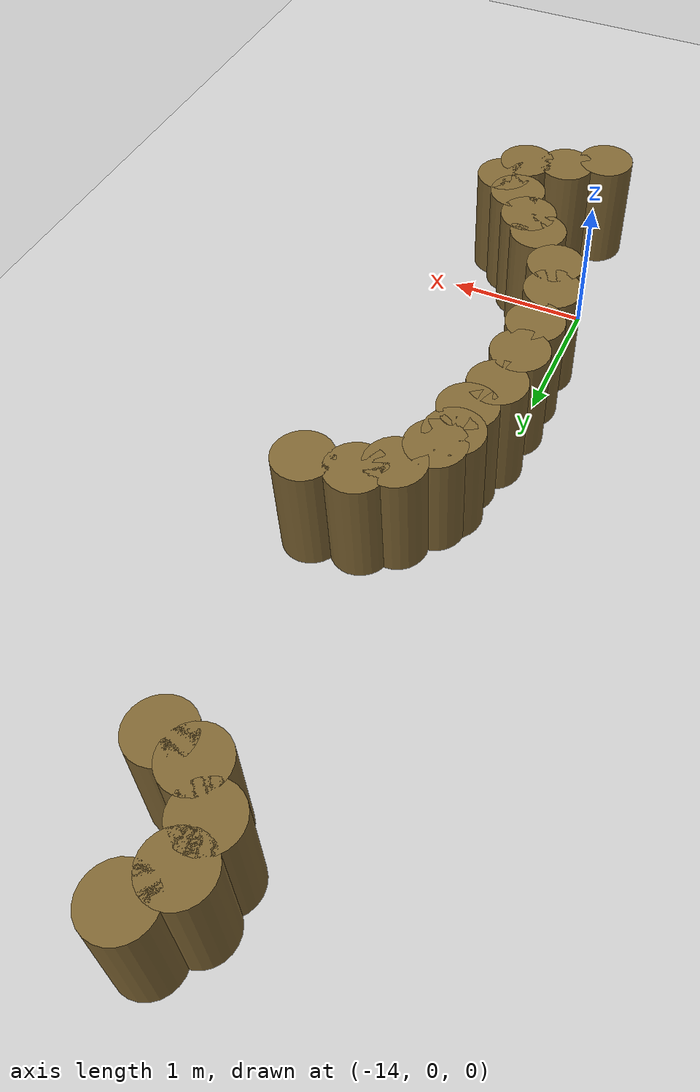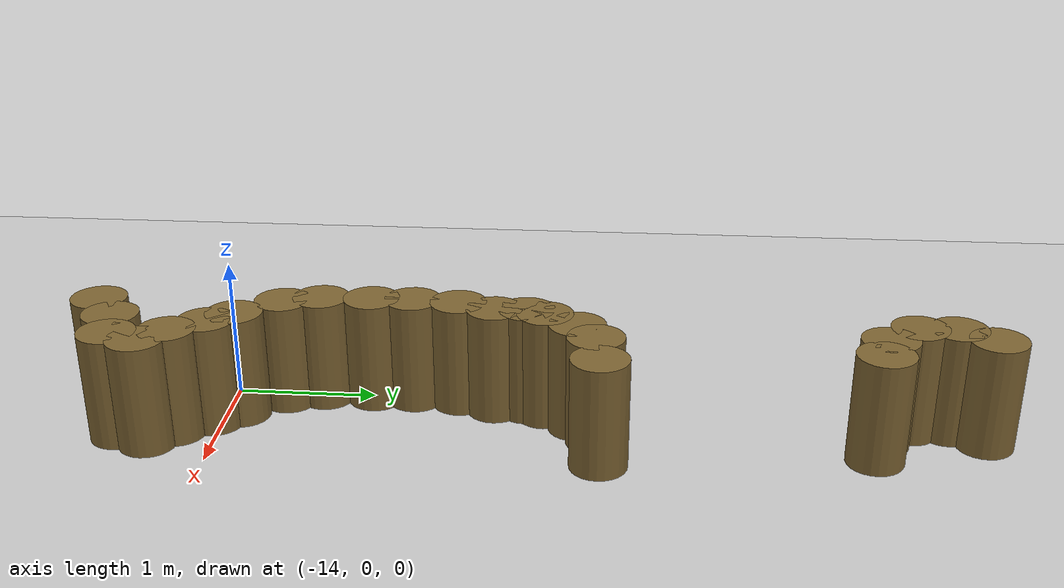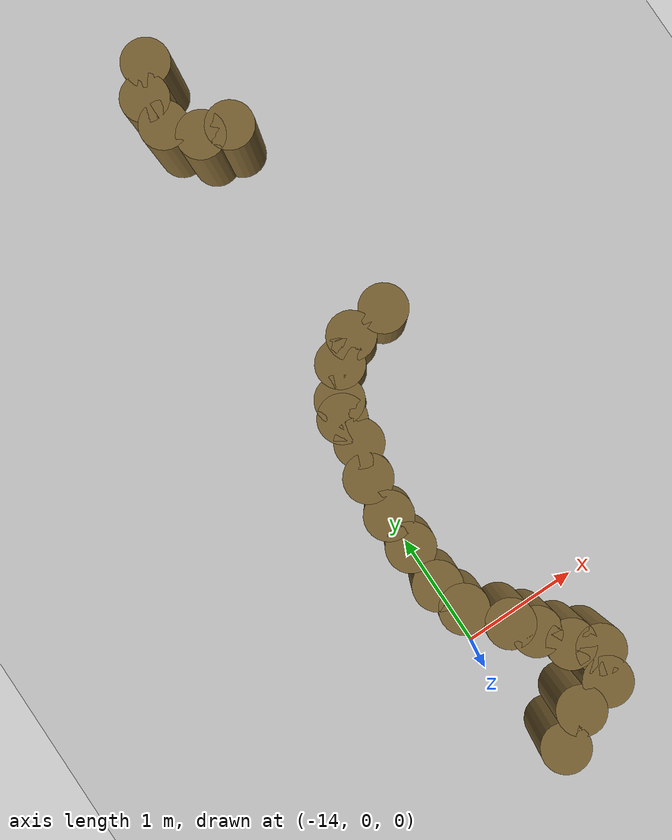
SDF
<sdf version="1.7">
 <world name="default">
  <model name="ground_plane">
   <static>1</static>
   <link name="link">
    <collision name="collision">
     <geometry><plane><normal>0 0 1</normal><size>100 100</size></plane></geometry>
     <surface><friction><ode><mu>100</mu><mu2>50</mu2></ode></friction></surface>
    </collision>
    <visual name="visual">
     <cast_shadows>0</cast_shadows>
     <geometry><plane><normal>0 0 1</normal><size>100 100</size></plane></geometry>
     <material>
      <script><uri>file://media/materials/scripts/gazebo.material</uri><name>Gazebo/Grey</name></script>
     </material>
    </visual>
   </link>
  </model>
  <model name="mini_cylinder_0_clone_0_clone_clone_clone_clone_3_clone_20_clone_1">
   <link name="link">
    <inertial>
     <mass>1</mass>
     <inertia><ixx>0.145833</ixx><ixy>0</ixy><ixz>0</ixz><iyy>0.145833</iyy><iyz>0</iyz><izz>0.125</izz></inertia>
    </inertial>
    <visual name="visual">
     <geometry><cylinder><radius>0.2</radius><length>0.8</length></cylinder></geometry>
     <material>
      <script><name>Gazebo/Grey</name><uri>file://media/materials/scripts/gazebo.material</uri></script>
      <shader type="vertex"><normal_map>__default__</normal_map></shader>
      <ambient>0.5 0.4 0.2 1</ambient>
      <diffuse>0.7 0.7 0.7 1</diffuse>
      <specular>0.01 0.01 0.01 1</specular>
      <emissive>0 0 0 1</emissive>
     </material>
    </visual>
    <collision name="collision">
     <geometry><cylinder><radius>0.2</radius><length>0.8</length></cylinder></geometry>
     <surface>
      <friction>
       <ode><mu>1</mu><mu2>1</mu2><fdir1>0 0 0</fdir1><slip1>0</slip1><slip2>0</slip2></ode>
       <torsional>
        <coefficient>1</coefficient>
        <patch_radius>0</patch_radius>
        <surface_radius>0</surface_radius>
        <use_patch_radius>1</use_patch_radius>
        <ode><slip>0</slip></ode>
       </torsional>
      </friction>
      <bounce><restitution_coefficient>0</restitution_coefficient><threshold>1e+06</threshold></bounce>
      <contact>
       <collide_without_contact>0</collide_without_contact>
       <collide_without_contact_bitmask>1</collide_without_contact_bitmask>
       <collide_bitmask>1</collide_bitmask>
       <ode>
        <soft_cfm>0</soft_cfm>
        <soft_erp>0.2</soft_erp>
        <kp>1e+13</kp>
        <kd>1</kd>
        <max_vel>0.01</max_vel>
        <min_depth>0</min_depth>
       </ode>
       <bullet>
        <split_impulse>1</split_impulse>
        <split_impulse_penetration_threshold>-0.01</split_impulse_penetration_threshold>
        <soft_cfm>0</soft_cfm>
        <soft_erp>0.2</soft_erp>
        <kp>1e+13</kp>
        <kd>1</kd>
       </bullet>
      </contact>
     </surface>
    </collision>
   </link>
   <static>1</static>
   <pose>-13.8351 -0.902632 0.4 0 -0 0</pose>
  </model>
  <model name="mini_cylinder_0_clone_0_clone_clone_clone_clone_3_clone_20_clone_2">
   <link name="link">
    <inertial>
     <mass>1</mass>
     <inertia><ixx>0.145833</ixx><ixy>0</ixy><ixz>0</ixz><iyy>0.145833</iyy><iyz>0</iyz><izz>0.125</izz></inertia>
    </inertial>
    <visual name="visual">
     <geometry><cylinder><radius>0.2</radius><length>0.8</length></cylinder></geometry>
     <material>
      <script><name>Gazebo/Grey</name><uri>file://media/materials/scripts/gazebo.material</uri></script>
      <shader type="vertex"><normal_map>__default__</normal_map></shader>
      <ambient>0.5 0.4 0.2 1</ambient>
      <diffuse>0.7 0.7 0.7 1</diffuse>
      <specular>0.01 0.01 0.01 1</specular>
      <emissive>0 0 0 1</emissive>
     </material>
    </visual>
    <collision name="collision">
     <geometry><cylinder><radius>0.2</radius><length>0.8</length></cylinder></geometry>
     <surface>
      <friction>
       <ode><mu>1</mu><mu2>1</mu2><fdir1>0 0 0</fdir1><slip1>0</slip1><slip2>0</slip2></ode>
       <torsional>
        <coefficient>1</coefficient>
        <patch_radius>0</patch_radius>
        <surface_radius>0</surface_radius>
        <use_patch_radius>1</use_patch_radius>
        <ode><slip>0</slip></ode>
       </torsional>
      </friction>
      <bounce><restitution_coefficient>0</restitution_coefficient><threshold>1e+06</threshold></bounce>
      <contact>
       <collide_without_contact>0</collide_without_contact>
       <collide_without_contact_bitmask>1</collide_without_contact_bitmask>
       <collide_bitmask>1</collide_bitmask>
       <ode>
        <soft_cfm>0</soft_cfm>
        <soft_erp>0.2</soft_erp>
        <kp>1e+13</kp>
        <kd>1</kd>
        <max_vel>0.01</max_vel>
        <min_depth>0</min_depth>
       </ode>
       <bullet>
        <split_impulse>1</split_impulse>
        <split_impulse_penetration_threshold>-0.01</split_impulse_penetration_threshold>
        <soft_cfm>0</soft_cfm>
        <soft_erp>0.2</soft_erp>
        <kp>1e+13</kp>
        <kd>1</kd>
       </bullet>
      </contact>
     </surface>
    </collision>
   </link>
   <static>1</static>
   <pose>-13.5779 -0.736125 0.4 0 -0 0</pose>
  </model>
  <model name="mini_cylinder_0_clone_0_clone_clone_clone_clone_3_clone_20_clone_3">
   <link name="link">
    <inertial>
     <mass>1</mass>
     <inertia><ixx>0.145833</ixx><ixy>0</ixy><ixz>0</ixz><iyy>0.145833</iyy><iyz>0</iyz><izz>0.125</izz></inertia>
    </inertial>
    <visual name="visual">
     <geometry><cylinder><radius>0.2</radius><length>0.8</length></cylinder></geometry>
     <material>
      <script><name>Gazebo/Grey</name><uri>file://media/materials/scripts/gazebo.material</uri></script>
      <shader type="vertex"><normal_map>__default__</normal_map></shader>
      <ambient>0.5 0.4 0.2 1</ambient>
      <diffuse>0.7 0.7 0.7 1</diffuse>
      <specular>0.01 0.01 0.01 1</specular>
      <emissive>0 0 0 1</emissive>
     </material>
    </visual>
    <collision name="collision">
     <geometry><cylinder><radius>0.2</radius><length>0.8</length></cylinder></geometry>
     <surface>
      <friction>
       <ode><mu>1</mu><mu2>1</mu2><fdir1>0 0 0</fdir1><slip1>0</slip1><slip2>0</slip2></ode>
       <torsional>
        <coefficient>1</coefficient>
        <patch_radius>0</patch_radius>
        <surface_radius>0</surface_radius>
        <use_patch_radius>1</use_patch_radius>
        <ode><slip>0</slip></ode>
       </torsional>
      </friction>
      <bounce><restitution_coefficient>0</restitution_coefficient><threshold>1e+06</threshold></bounce>
      <contact>
       <collide_without_contact>0</collide_without_contact>
       <collide_without_contact_bitmask>1</collide_without_contact_bitmask>
       <collide_bitmask>1</collide_bitmask>
       <ode>
        <soft_cfm>0</soft_cfm>
        <soft_erp>0.2</soft_erp>
        <kp>1e+13</kp>
        <kd>1</kd>
        <max_vel>0.01</max_vel>
        <min_depth>0</min_depth>
       </ode>
       <bullet>
        <split_impulse>1</split_impulse>
        <split_impulse_penetration_threshold>-0.01</split_impulse_penetration_threshold>
        <soft_cfm>0</soft_cfm>
        <soft_erp>0.2</soft_erp>
        <kp>1e+13</kp>
        <kd>1</kd>
       </bullet>
      </contact>
     </surface>
    </collision>
   </link>
   <static>1</static>
   <pose>-13.2871 -0.666545 0.4 0 -0 0</pose>
  </model>
  <model name="mini_cylinder_0_clone_0_clone_clone_clone_clone_3_clone_20_clone_23">
   <link name="link">
    <inertial>
     <mass>1</mass>
     <inertia><ixx>0.145833</ixx><ixy>0</ixy><ixz>0</ixz><iyy>0.145833</iyy><iyz>0</iyz><izz>0.125</izz></inertia>
    </inertial>
    <visual name="visual">
     <geometry><cylinder><radius>0.2</radius><length>0.8</length></cylinder></geometry>
     <material>
      <script><name>Gazebo/Grey</name><uri>file://media/materials/scripts/gazebo.material</uri></script>
      <shader type="vertex"><normal_map>__default__</normal_map></shader>
      <ambient>0.5 0.4 0.2 1</ambient>
      <diffuse>0.7 0.7 0.7 1</diffuse>
      <specular>0.01 0.01 0.01 1</specular>
      <emissive>0 0 0 1</emissive>
     </material>
    </visual>
    <collision name="collision">
     <geometry><cylinder><radius>0.2</radius><length>0.8</length></cylinder></geometry>
     <surface>
      <friction>
       <ode><mu>1</mu><mu2>1</mu2><fdir1>0 0 0</fdir1><slip1>0</slip1><slip2>0</slip2></ode>
       <torsional>
        <coefficient>1</coefficient>
        <patch_radius>0</patch_radius>
        <surface_radius>0</surface_radius>
        <use_patch_radius>1</use_patch_radius>
        <ode><slip>0</slip></ode>
       </torsional>
      </friction>
      <bounce><restitution_coefficient>0</restitution_coefficient><threshold>1e+06</threshold></bounce>
      <contact>
       <collide_without_contact>0</collide_without_contact>
       <collide_without_contact_bitmask>1</collide_without_contact_bitmask>
       <collide_bitmask>1</collide_bitmask>
       <ode>
        <soft_cfm>0</soft_cfm>
        <soft_erp>0.2</soft_erp>
        <kp>1e+13</kp>
        <kd>1</kd>
        <max_vel>0.01</max_vel>
        <min_depth>0</min_depth>
       </ode>
       <bullet>
        <split_impulse>1</split_impulse>
        <split_impulse_penetration_threshold>-0.01</split_impulse_penetration_threshold>
        <soft_cfm>0</soft_cfm>
        <soft_erp>0.2</soft_erp>
        <kp>1e+13</kp>
        <kd>1</kd>
       </bullet>
      </contact>
     </surface>
    </collision>
   </link>
   <static>1</static>
   <pose>-13.1132 2.65293 0.4 0 -0 0</pose>
  </model>
  <model name="mini_cylinder_0_clone_0_clone_clone_clone_clone_3_clone_20_clone_24">
   <link name="link">
    <inertial>
     <mass>1</mass>
     <inertia><ixx>0.145833</ixx><ixy>0</ixy><ixz>0</ixz><iyy>0.145833</iyy><iyz>0</iyz><izz>0.125</izz></inertia>
    </inertial>
    <visual name="visual">
     <geometry><cylinder><radius>0.2</radius><length>0.8</length></cylinder></geometry>
     <material>
      <script><name>Gazebo/Grey</name><uri>file://media/materials/scripts/gazebo.material</uri></script>
      <shader type="vertex"><normal_map>__default__</normal_map></shader>
      <ambient>0.5 0.4 0.2 1</ambient>
      <diffuse>0.7 0.7 0.7 1</diffuse>
      <specular>0.01 0.01 0.01 1</specular>
      <emissive>0 0 0 1</emissive>
     </material>
    </visual>
    <collision name="collision">
     <geometry><cylinder><radius>0.2</radius><length>0.8</length></cylinder></geometry>
     <surface>
      <friction>
       <ode><mu>1</mu><mu2>1</mu2><fdir1>0 0 0</fdir1><slip1>0</slip1><slip2>0</slip2></ode>
       <torsional>
        <coefficient>1</coefficient>
        <patch_radius>0</patch_radius>
        <surface_radius>0</surface_radius>
        <use_patch_radius>1</use_patch_radius>
        <ode><slip>0</slip></ode>
       </torsional>
      </friction>
      <bounce><restitution_coefficient>0</restitution_coefficient><threshold>1e+06</threshold></bounce>
      <contact>
       <collide_without_contact>0</collide_without_contact>
       <collide_without_contact_bitmask>1</collide_without_contact_bitmask>
       <collide_bitmask>1</collide_bitmask>
       <ode>
        <soft_cfm>0</soft_cfm>
        <soft_erp>0.2</soft_erp>
        <kp>1e+13</kp>
        <kd>1</kd>
        <max_vel>0.01</max_vel>
        <min_depth>0</min_depth>
       </ode>
       <bullet>
        <split_impulse>1</split_impulse>
        <split_impulse_penetration_threshold>-0.01</split_impulse_penetration_threshold>
        <soft_cfm>0</soft_cfm>
        <soft_erp>0.2</soft_erp>
        <kp>1e+13</kp>
        <kd>1</kd>
       </bullet>
      </contact>
     </surface>
    </collision>
   </link>
   <static>1</static>
   <pose>-13.4377 2.61527 0.4 0 -0 0</pose>
  </model>
  <model name="mini_cylinder_0_clone_0_clone_clone_clone_clone_3_clone_20_clone_25">
   <link name="link">
    <inertial>
     <mass>1</mass>
     <inertia><ixx>0.145833</ixx><ixy>0</ixy><ixz>0</ixz><iyy>0.145833</iyy><iyz>0</iyz><izz>0.125</izz></inertia>
    </inertial>
    <visual name="visual">
     <geometry><cylinder><radius>0.2</radius><length>0.8</length></cylinder></geometry>
     <material>
      <script><name>Gazebo/Grey</name><uri>file://media/materials/scripts/gazebo.material</uri></script>
      <shader type="vertex"><normal_map>__default__</normal_map></shader>
      <ambient>0.5 0.4 0.2 1</ambient>
      <diffuse>0.7 0.7 0.7 1</diffuse>
      <specular>0.01 0.01 0.01 1</specular>
      <emissive>0 0 0 1</emissive>
     </material>
    </visual>
    <collision name="collision">
     <geometry><cylinder><radius>0.2</radius><length>0.8</length></cylinder></geometry>
     <surface>
      <friction>
       <ode><mu>1</mu><mu2>1</mu2><fdir1>0 0 0</fdir1><slip1>0</slip1><slip2>0</slip2></ode>
       <torsional>
        <coefficient>1</coefficient>
        <patch_radius>0</patch_radius>
        <surface_radius>0</surface_radius>
        <use_patch_radius>1</use_patch_radius>
        <ode><slip>0</slip></ode>
       </torsional>
      </friction>
      <bounce><restitution_coefficient>0</restitution_coefficient><threshold>1e+06</threshold></bounce>
      <contact>
       <collide_without_contact>0</collide_without_contact>
       <collide_without_contact_bitmask>1</collide_without_contact_bitmask>
       <collide_bitmask>1</collide_bitmask>
       <ode>
        <soft_cfm>0</soft_cfm>
        <soft_erp>0.2</soft_erp>
        <kp>1e+13</kp>
        <kd>1</kd>
        <max_vel>0.01</max_vel>
        <min_depth>0</min_depth>
       </ode>
       <bullet>
        <split_impulse>1</split_impulse>
        <split_impulse_penetration_threshold>-0.01</split_impulse_penetration_threshold>
        <soft_cfm>0</soft_cfm>
        <soft_erp>0.2</soft_erp>
        <kp>1e+13</kp>
        <kd>1</kd>
       </bullet>
      </contact>
     </surface>
    </collision>
   </link>
   <static>1</static>
   <pose>-13.6303 2.482 0.4 0 -0 0</pose>
  </model>
  <model name="mini_cylinder_0_clone_0_clone_clone_clone_clone_3_clone_20_clone_26">
   <link name="link">
    <inertial>
     <mass>1</mass>
     <inertia><ixx>0.145833</ixx><ixy>0</ixy><ixz>0</ixz><iyy>0.145833</iyy><iyz>0</iyz><izz>0.125</izz></inertia>
    </inertial>
    <visual name="visual">
     <geometry><cylinder><radius>0.2</radius><length>0.8</length></cylinder></geometry>
     <material>
      <script><name>Gazebo/Grey</name><uri>file://media/materials/scripts/gazebo.material</uri></script>
      <shader type="vertex"><normal_map>__default__</normal_map></shader>
      <ambient>0.5 0.4 0.2 1</ambient>
      <diffuse>0.7 0.7 0.7 1</diffuse>
      <specular>0.01 0.01 0.01 1</specular>
      <emissive>0 0 0 1</emissive>
     </material>
    </visual>
    <collision name="collision">
     <geometry><cylinder><radius>0.2</radius><length>0.8</length></cylinder></geometry>
     <surface>
      <friction>
       <ode><mu>1</mu><mu2>1</mu2><fdir1>0 0 0</fdir1><slip1>0</slip1><slip2>0</slip2></ode>
       <torsional>
        <coefficient>1</coefficient>
        <patch_radius>0</patch_radius>
        <surface_radius>0</surface_radius>
        <use_patch_radius>1</use_patch_radius>
        <ode><slip>0</slip></ode>
       </torsional>
      </friction>
      <bounce><restitution_coefficient>0</restitution_coefficient><threshold>1e+06</threshold></bounce>
      <contact>
       <collide_without_contact>0</collide_without_contact>
       <collide_without_contact_bitmask>1</collide_without_contact_bitmask>
       <collide_bitmask>1</collide_bitmask>
       <ode>
        <soft_cfm>0</soft_cfm>
        <soft_erp>0.2</soft_erp>
        <kp>1e+13</kp>
        <kd>1</kd>
        <max_vel>0.01</max_vel>
        <min_depth>0</min_depth>
       </ode>
       <bullet>
        <split_impulse>1</split_impulse>
        <split_impulse_penetration_threshold>-0.01</split_impulse_penetration_threshold>
        <soft_cfm>0</soft_cfm>
        <soft_erp>0.2</soft_erp>
        <kp>1e+13</kp>
        <kd>1</kd>
       </bullet>
      </contact>
     </surface>
    </collision>
   </link>
   <static>1</static>
   <pose>-13.7894 2.25201 0.4 0 -0 0</pose>
  </model>
  <model name="mini_cylinder_0_clone_0_clone_clone_clone_clone_3_clone_20_clone_27">
   <link name="link">
    <inertial>
     <mass>1</mass>
     <inertia><ixx>0.145833</ixx><ixy>0</ixy><ixz>0</ixz><iyy>0.145833</iyy><iyz>0</iyz><izz>0.125</izz></inertia>
    </inertial>
    <visual name="visual">
     <geometry><cylinder><radius>0.2</radius><length>0.8</length></cylinder></geometry>
     <material>
      <script><name>Gazebo/Grey</name><uri>file://media/materials/scripts/gazebo.material</uri></script>
      <shader type="vertex"><normal_map>__default__</normal_map></shader>
      <ambient>0.5 0.4 0.2 1</ambient>
      <diffuse>0.7 0.7 0.7 1</diffuse>
      <specular>0.01 0.01 0.01 1</specular>
      <emissive>0 0 0 1</emissive>
     </material>
    </visual>
    <collision name="collision">
     <geometry><cylinder><radius>0.2</radius><length>0.8</length></cylinder></geometry>
     <surface>
      <friction>
       <ode><mu>1</mu><mu2>1</mu2><fdir1>0 0 0</fdir1><slip1>0</slip1><slip2>0</slip2></ode>
       <torsional>
        <coefficient>1</coefficient>
        <patch_radius>0</patch_radius>
        <surface_radius>0</surface_radius>
        <use_patch_radius>1</use_patch_radius>
        <ode><slip>0</slip></ode>
       </torsional>
      </friction>
      <bounce><restitution_coefficient>0</restitution_coefficient><threshold>1e+06</threshold></bounce>
      <contact>
       <collide_without_contact>0</collide_without_contact>
       <collide_without_contact_bitmask>1</collide_without_contact_bitmask>
       <collide_bitmask>1</collide_bitmask>
       <ode>
        <soft_cfm>0</soft_cfm>
        <soft_erp>0.2</soft_erp>
        <kp>1e+13</kp>
        <kd>1</kd>
        <max_vel>0.01</max_vel>
        <min_depth>0</min_depth>
       </ode>
       <bullet>
        <split_impulse>1</split_impulse>
        <split_impulse_penetration_threshold>-0.01</split_impulse_penetration_threshold>
        <soft_cfm>0</soft_cfm>
        <soft_erp>0.2</soft_erp>
        <kp>1e+13</kp>
        <kd>1</kd>
       </bullet>
      </contact>
     </surface>
    </collision>
   </link>
   <static>1</static>
   <pose>-13.8483 1.89327 0.4 0 -0 0</pose>
  </model>
  <model name="mini_cylinder_0_clone_0_clone_clone_clone_clone_3_clone_20_clone_28">
   <link name="link">
    <inertial>
     <mass>1</mass>
     <inertia><ixx>0.145833</ixx><ixy>0</ixy><ixz>0</ixz><iyy>0.145833</iyy><iyz>0</iyz><izz>0.125</izz></inertia>
    </inertial>
    <visual name="visual">
     <geometry><cylinder><radius>0.2</radius><length>0.8</length></cylinder></geometry>
     <material>
      <script><name>Gazebo/Grey</name><uri>file://media/materials/scripts/gazebo.material</uri></script>
      <shader type="vertex"><normal_map>__default__</normal_map></shader>
      <ambient>0.5 0.4 0.2 1</ambient>
      <diffuse>0.7 0.7 0.7 1</diffuse>
      <specular>0.01 0.01 0.01 1</specular>
      <emissive>0 0 0 1</emissive>
     </material>
    </visual>
    <collision name="collision">
     <geometry><cylinder><radius>0.2</radius><length>0.8</length></cylinder></geometry>
     <surface>
      <friction>
       <ode><mu>1</mu><mu2>1</mu2><fdir1>0 0 0</fdir1><slip1>0</slip1><slip2>0</slip2></ode>
       <torsional>
        <coefficient>1</coefficient>
        <patch_radius>0</patch_radius>
        <surface_radius>0</surface_radius>
        <use_patch_radius>1</use_patch_radius>
        <ode><slip>0</slip></ode>
       </torsional>
      </friction>
      <bounce><restitution_coefficient>0</restitution_coefficient><threshold>1e+06</threshold></bounce>
      <contact>
       <collide_without_contact>0</collide_without_contact>
       <collide_without_contact_bitmask>1</collide_without_contact_bitmask>
       <collide_bitmask>1</collide_bitmask>
       <ode>
        <soft_cfm>0</soft_cfm>
        <soft_erp>0.2</soft_erp>
        <kp>1e+13</kp>
        <kd>1</kd>
        <max_vel>0.01</max_vel>
        <min_depth>0</min_depth>
       </ode>
       <bullet>
        <split_impulse>1</split_impulse>
        <split_impulse_penetration_threshold>-0.01</split_impulse_penetration_threshold>
        <soft_cfm>0</soft_cfm>
        <soft_erp>0.2</soft_erp>
        <kp>1e+13</kp>
        <kd>1</kd>
       </bullet>
      </contact>
     </surface>
    </collision>
   </link>
   <static>1</static>
   <pose>-13.9409 1.63155 0.4 0 -0 0</pose>
  </model>
  <model name="mini_cylinder_0_clone_0_clone_clone_clone_clone_3_clone_20_clone_29">
   <link name="link">
    <inertial>
     <mass>1</mass>
     <inertia><ixx>0.145833</ixx><ixy>0</ixy><ixz>0</ixz><iyy>0.145833</iyy><iyz>0</iyz><izz>0.125</izz></inertia>
    </inertial>
    <visual name="visual">
     <geometry><cylinder><radius>0.2</radius><length>0.8</length></cylinder></geometry>
     <material>
      <script><name>Gazebo/Grey</name><uri>file://media/materials/scripts/gazebo.material</uri></script>
      <shader type="vertex"><normal_map>__default__</normal_map></shader>
      <ambient>0.5 0.4 0.2 1</ambient>
      <diffuse>0.7 0.7 0.7 1</diffuse>
      <specular>0.01 0.01 0.01 1</specular>
      <emissive>0 0 0 1</emissive>
     </material>
    </visual>
    <collision name="collision">
     <geometry><cylinder><radius>0.2</radius><length>0.8</length></cylinder></geometry>
     <surface>
      <friction>
       <ode><mu>1</mu><mu2>1</mu2><fdir1>0 0 0</fdir1><slip1>0</slip1><slip2>0</slip2></ode>
       <torsional>
        <coefficient>1</coefficient>
        <patch_radius>0</patch_radius>
        <surface_radius>0</surface_radius>
        <use_patch_radius>1</use_patch_radius>
        <ode><slip>0</slip></ode>
       </torsional>
      </friction>
      <bounce><restitution_coefficient>0</restitution_coefficient><threshold>1e+06</threshold></bounce>
      <contact>
       <collide_without_contact>0</collide_without_contact>
       <collide_without_contact_bitmask>1</collide_without_contact_bitmask>
       <collide_bitmask>1</collide_bitmask>
       <ode>
        <soft_cfm>0</soft_cfm>
        <soft_erp>0.2</soft_erp>
        <kp>1e+13</kp>
        <kd>1</kd>
        <max_vel>0.01</max_vel>
        <min_depth>0</min_depth>
       </ode>
       <bullet>
        <split_impulse>1</split_impulse>
        <split_impulse_penetration_threshold>-0.01</split_impulse_penetration_threshold>
        <soft_cfm>0</soft_cfm>
        <soft_erp>0.2</soft_erp>
        <kp>1e+13</kp>
        <kd>1</kd>
       </bullet>
      </contact>
     </surface>
    </collision>
   </link>
   <static>1</static>
   <pose>-13.9687 1.3061 0.4 0 -0 0</pose>
  </model>
  <model name="mini_cylinder_0_clone_0_clone_clone_clone_clone_3_clone_20_clone_30">
   <link name="link">
    <inertial>
     <mass>1</mass>
     <inertia><ixx>0.145833</ixx><ixy>0</ixy><ixz>0</ixz><iyy>0.145833</iyy><iyz>0</iyz><izz>0.125</izz></inertia>
    </inertial>
    <visual name="visual">
     <geometry><cylinder><radius>0.2</radius><length>0.8</length></cylinder></geometry>
     <material>
      <script><name>Gazebo/Grey</name><uri>file://media/materials/scripts/gazebo.material</uri></script>
      <shader type="vertex"><normal_map>__default__</normal_map></shader>
      <ambient>0.5 0.4 0.2 1</ambient>
      <diffuse>0.7 0.7 0.7 1</diffuse>
      <specular>0.01 0.01 0.01 1</specular>
      <emissive>0 0 0 1</emissive>
     </material>
    </visual>
    <collision name="collision">
     <geometry><cylinder><radius>0.2</radius><length>0.8</length></cylinder></geometry>
     <surface>
      <friction>
       <ode><mu>1</mu><mu2>1</mu2><fdir1>0 0 0</fdir1><slip1>0</slip1><slip2>0</slip2></ode>
       <torsional>
        <coefficient>1</coefficient>
        <patch_radius>0</patch_radius>
        <surface_radius>0</surface_radius>
        <use_patch_radius>1</use_patch_radius>
        <ode><slip>0</slip></ode>
       </torsional>
      </friction>
      <bounce><restitution_coefficient>0</restitution_coefficient><threshold>1e+06</threshold></bounce>
      <contact>
       <collide_without_contact>0</collide_without_contact>
       <collide_without_contact_bitmask>1</collide_without_contact_bitmask>
       <collide_bitmask>1</collide_bitmask>
       <ode>
        <soft_cfm>0</soft_cfm>
        <soft_erp>0.2</soft_erp>
        <kp>1e+13</kp>
        <kd>1</kd>
        <max_vel>0.01</max_vel>
        <min_depth>0</min_depth>
       </ode>
       <bullet>
        <split_impulse>1</split_impulse>
        <split_impulse_penetration_threshold>-0.01</split_impulse_penetration_threshold>
        <soft_cfm>0</soft_cfm>
        <soft_erp>0.2</soft_erp>
        <kp>1e+13</kp>
        <kd>1</kd>
       </bullet>
      </contact>
     </surface>
    </collision>
   </link>
   <static>1</static>
   <pose>-13.964 1.01349 0.4 0 -0 0</pose>
  </model>
  <model name="mini_cylinder_0_clone_0_clone_clone_clone_clone_3_clone_20_clone_31">
   <link name="link">
    <inertial>
     <mass>1</mass>
     <inertia><ixx>0.145833</ixx><ixy>0</ixy><ixz>0</ixz><iyy>0.145833</iyy><iyz>0</iyz><izz>0.125</izz></inertia>
    </inertial>
    <visual name="visual">
     <geometry><cylinder><radius>0.2</radius><length>0.8</length></cylinder></geometry>
     <material>
      <script><name>Gazebo/Grey</name><uri>file://media/materials/scripts/gazebo.material</uri></script>
      <shader type="vertex"><normal_map>__default__</normal_map></shader>
      <ambient>0.5 0.4 0.2 1</ambient>
      <diffuse>0.7 0.7 0.7 1</diffuse>
      <specular>0.01 0.01 0.01 1</specular>
      <emissive>0 0 0 1</emissive>
     </material>
    </visual>
    <collision name="collision">
     <geometry><cylinder><radius>0.2</radius><length>0.8</length></cylinder></geometry>
     <surface>
      <friction>
       <ode><mu>1</mu><mu2>1</mu2><fdir1>0 0 0</fdir1><slip1>0</slip1><slip2>0</slip2></ode>
       <torsional>
        <coefficient>1</coefficient>
        <patch_radius>0</patch_radius>
        <surface_radius>0</surface_radius>
        <use_patch_radius>1</use_patch_radius>
        <ode><slip>0</slip></ode>
       </torsional>
      </friction>
      <bounce><restitution_coefficient>0</restitution_coefficient><threshold>1e+06</threshold></bounce>
      <contact>
       <collide_without_contact>0</collide_without_contact>
       <collide_without_contact_bitmask>1</collide_without_contact_bitmask>
       <collide_bitmask>1</collide_bitmask>
       <ode>
        <soft_cfm>0</soft_cfm>
        <soft_erp>0.2</soft_erp>
        <kp>1e+13</kp>
        <kd>1</kd>
        <max_vel>0.01</max_vel>
        <min_depth>0</min_depth>
       </ode>
       <bullet>
        <split_impulse>1</split_impulse>
        <split_impulse_penetration_threshold>-0.01</split_impulse_penetration_threshold>
        <soft_cfm>0</soft_cfm>
        <soft_erp>0.2</soft_erp>
        <kp>1e+13</kp>
        <kd>1</kd>
       </bullet>
      </contact>
     </surface>
    </collision>
   </link>
   <static>1</static>
   <pose>-13.9581 0.655887 0.4 0 -0 0</pose>
  </model>
  <model name="mini_cylinder_0_clone_0_clone_clone_clone_clone_3_clone_20_clone_32">
   <link name="link">
    <inertial>
     <mass>1</mass>
     <inertia><ixx>0.145833</ixx><ixy>0</ixy><ixz>0</ixz><iyy>0.145833</iyy><iyz>0</iyz><izz>0.125</izz></inertia>
    </inertial>
    <visual name="visual">
     <geometry><cylinder><radius>0.2</radius><length>0.8</length></cylinder></geometry>
     <material>
      <script><name>Gazebo/Grey</name><uri>file://media/materials/scripts/gazebo.material</uri></script>
      <shader type="vertex"><normal_map>__default__</normal_map></shader>
      <ambient>0.5 0.4 0.2 1</ambient>
      <diffuse>0.7 0.7 0.7 1</diffuse>
      <specular>0.01 0.01 0.01 1</specular>
      <emissive>0 0 0 1</emissive>
     </material>
    </visual>
    <collision name="collision">
     <geometry><cylinder><radius>0.2</radius><length>0.8</length></cylinder></geometry>
     <surface>
      <friction>
       <ode><mu>1</mu><mu2>1</mu2><fdir1>0 0 0</fdir1><slip1>0</slip1><slip2>0</slip2></ode>
       <torsional>
        <coefficient>1</coefficient>
        <patch_radius>0</patch_radius>
        <surface_radius>0</surface_radius>
        <use_patch_radius>1</use_patch_radius>
        <ode><slip>0</slip></ode>
       </torsional>
      </friction>
      <bounce><restitution_coefficient>0</restitution_coefficient><threshold>1e+06</threshold></bounce>
      <contact>
       <collide_without_contact>0</collide_without_contact>
       <collide_without_contact_bitmask>1</collide_without_contact_bitmask>
       <collide_bitmask>1</collide_bitmask>
       <ode>
        <soft_cfm>0</soft_cfm>
        <soft_erp>0.2</soft_erp>
        <kp>1e+13</kp>
        <kd>1</kd>
        <max_vel>0.01</max_vel>
        <min_depth>0</min_depth>
       </ode>
       <bullet>
        <split_impulse>1</split_impulse>
        <split_impulse_penetration_threshold>-0.01</split_impulse_penetration_threshold>
        <soft_cfm>0</soft_cfm>
        <soft_erp>0.2</soft_erp>
        <kp>1e+13</kp>
        <kd>1</kd>
       </bullet>
      </contact>
     </surface>
    </collision>
   </link>
   <static>1</static>
   <pose>-13.8886 0.396803 0.4 0 -0 0</pose>
  </model>
  <model name="mini_cylinder_0_clone_0_clone_clone_clone_clone_3_clone_20_clone_33">
   <link name="link">
    <inertial>
     <mass>1</mass>
     <inertia><ixx>0.145833</ixx><ixy>0</ixy><ixz>0</ixz><iyy>0.145833</iyy><iyz>0</iyz><izz>0.125</izz></inertia>
    </inertial>
    <visual name="visual">
     <geometry><cylinder><radius>0.2</radius><length>0.8</length></cylinder></geometry>
     <material>
      <script><name>Gazebo/Grey</name><uri>file://media/materials/scripts/gazebo.material</uri></script>
      <shader type="vertex"><normal_map>__default__</normal_map></shader>
      <ambient>0.5 0.4 0.2 1</ambient>
      <diffuse>0.7 0.7 0.7 1</diffuse>
      <specular>0.01 0.01 0.01 1</specular>
      <emissive>0 0 0 1</emissive>
     </material>
    </visual>
    <collision name="collision">
     <geometry><cylinder><radius>0.2</radius><length>0.8</length></cylinder></geometry>
     <surface>
      <friction>
       <ode><mu>1</mu><mu2>1</mu2><fdir1>0 0 0</fdir1><slip1>0</slip1><slip2>0</slip2></ode>
       <torsional>
        <coefficient>1</coefficient>
        <patch_radius>0</patch_radius>
        <surface_radius>0</surface_radius>
        <use_patch_radius>1</use_patch_radius>
        <ode><slip>0</slip></ode>
       </torsional>
      </friction>
      <bounce><restitution_coefficient>0</restitution_coefficient><threshold>1e+06</threshold></bounce>
      <contact>
       <collide_without_contact>0</collide_without_contact>
       <collide_without_contact_bitmask>1</collide_without_contact_bitmask>
       <collide_bitmask>1</collide_bitmask>
       <ode>
        <soft_cfm>0</soft_cfm>
        <soft_erp>0.2</soft_erp>
        <kp>1e+13</kp>
        <kd>1</kd>
        <max_vel>0.01</max_vel>
        <min_depth>0</min_depth>
       </ode>
       <bullet>
        <split_impulse>1</split_impulse>
        <split_impulse_penetration_threshold>-0.01</split_impulse_penetration_threshold>
        <soft_cfm>0</soft_cfm>
        <soft_erp>0.2</soft_erp>
        <kp>1e+13</kp>
        <kd>1</kd>
       </bullet>
      </contact>
     </surface>
    </collision>
   </link>
   <static>1</static>
   <pose>-13.6562 0.107864 0.4 0 -0 0</pose>
  </model>
  <model name="mini_cylinder_0_clone_0_clone_clone_clone_clone_3_clone_20_clone_34">
   <link name="link">
    <inertial>
     <mass>1</mass>
     <inertia><ixx>0.145833</ixx><ixy>0</ixy><ixz>0</ixz><iyy>0.145833</iyy><iyz>0</iyz><izz>0.125</izz></inertia>
    </inertial>
    <visual name="visual">
     <geometry><cylinder><radius>0.2</radius><length>0.8</length></cylinder></geometry>
     <material>
      <script><name>Gazebo/Grey</name><uri>file://media/materials/scripts/gazebo.material</uri></script>
      <shader type="vertex"><normal_map>__default__</normal_map></shader>
      <ambient>0.5 0.4 0.2 1</ambient>
      <diffuse>0.7 0.7 0.7 1</diffuse>
      <specular>0.01 0.01 0.01 1</specular>
      <emissive>0 0 0 1</emissive>
     </material>
    </visual>
    <collision name="collision">
     <geometry><cylinder><radius>0.2</radius><length>0.8</length></cylinder></geometry>
     <surface>
      <friction>
       <ode><mu>1</mu><mu2>1</mu2><fdir1>0 0 0</fdir1><slip1>0</slip1><slip2>0</slip2></ode>
       <torsional>
        <coefficient>1</coefficient>
        <patch_radius>0</patch_radius>
        <surface_radius>0</surface_radius>
        <use_patch_radius>1</use_patch_radius>
        <ode><slip>0</slip></ode>
       </torsional>
      </friction>
      <bounce><restitution_coefficient>0</restitution_coefficient><threshold>1e+06</threshold></bounce>
      <contact>
       <collide_without_contact>0</collide_without_contact>
       <collide_without_contact_bitmask>1</collide_without_contact_bitmask>
       <collide_bitmask>1</collide_bitmask>
       <ode>
        <soft_cfm>0</soft_cfm>
        <soft_erp>0.2</soft_erp>
        <kp>1e+13</kp>
        <kd>1</kd>
        <max_vel>0.01</max_vel>
        <min_depth>0</min_depth>
       </ode>
       <bullet>
        <split_impulse>1</split_impulse>
        <split_impulse_penetration_threshold>-0.01</split_impulse_penetration_threshold>
        <soft_cfm>0</soft_cfm>
        <soft_erp>0.2</soft_erp>
        <kp>1e+13</kp>
        <kd>1</kd>
       </bullet>
      </contact>
     </surface>
    </collision>
   </link>
   <static>1</static>
   <pose>-13.5237 -0.052555 0.4 0 -0 0</pose>
  </model>
  <model name="mini_cylinder_0_clone_0_clone_clone_clone_clone_3_clone_20_clone_35">
   <link name="link">
    <inertial>
     <mass>1</mass>
     <inertia><ixx>0.145833</ixx><ixy>0</ixy><ixz>0</ixz><iyy>0.145833</iyy><iyz>0</iyz><izz>0.125</izz></inertia>
    </inertial>
    <visual name="visual">
     <geometry><cylinder><radius>0.2</radius><length>0.8</length></cylinder></geometry>
     <material>
      <script><name>Gazebo/Grey</name><uri>file://media/materials/scripts/gazebo.material</uri></script>
      <shader type="vertex"><normal_map>__default__</normal_map></shader>
      <ambient>0.5 0.4 0.2 1</ambient>
      <diffuse>0.7 0.7 0.7 1</diffuse>
      <specular>0.01 0.01 0.01 1</specular>
      <emissive>0 0 0 1</emissive>
     </material>
    </visual>
    <collision name="collision">
     <geometry><cylinder><radius>0.2</radius><length>0.8</length></cylinder></geometry>
     <surface>
      <friction>
       <ode><mu>1</mu><mu2>1</mu2><fdir1>0 0 0</fdir1><slip1>0</slip1><slip2>0</slip2></ode>
       <torsional>
        <coefficient>1</coefficient>
        <patch_radius>0</patch_radius>
        <surface_radius>0</surface_radius>
        <use_patch_radius>1</use_patch_radius>
        <ode><slip>0</slip></ode>
       </torsional>
      </friction>
      <bounce><restitution_coefficient>0</restitution_coefficient><threshold>1e+06</threshold></bounce>
      <contact>
       <collide_without_contact>0</collide_without_contact>
       <collide_without_contact_bitmask>1</collide_without_contact_bitmask>
       <collide_bitmask>1</collide_bitmask>
       <ode>
        <soft_cfm>0</soft_cfm>
        <soft_erp>0.2</soft_erp>
        <kp>1e+13</kp>
        <kd>1</kd>
        <max_vel>0.01</max_vel>
        <min_depth>0</min_depth>
       </ode>
       <bullet>
        <split_impulse>1</split_impulse>
        <split_impulse_penetration_threshold>-0.01</split_impulse_penetration_threshold>
        <soft_cfm>0</soft_cfm>
        <soft_erp>0.2</soft_erp>
        <kp>1e+13</kp>
        <kd>1</kd>
       </bullet>
      </contact>
     </surface>
    </collision>
   </link>
   <static>1</static>
   <pose>-13.3581 -0.277548 0.4 0 -0 0</pose>
  </model>
  <model name="mini_cylinder_0_clone_0_clone_clone_clone_clone_3_clone_20_clone_38">
   <link name="link">
    <inertial>
     <mass>1</mass>
     <inertia><ixx>0.145833</ixx><ixy>0</ixy><ixz>0</ixz><iyy>0.145833</iyy><iyz>0</iyz><izz>0.125</izz></inertia>
    </inertial>
    <visual name="visual">
     <geometry><cylinder><radius>0.2</radius><length>0.8</length></cylinder></geometry>
     <material>
      <script><name>Gazebo/Grey</name><uri>file://media/materials/scripts/gazebo.material</uri></script>
      <shader type="vertex"><normal_map>__default__</normal_map></shader>
      <ambient>0.5 0.4 0.2 1</ambient>
      <diffuse>0.7 0.7 0.7 1</diffuse>
      <specular>0.01 0.01 0.01 1</specular>
      <emissive>0 0 0 1</emissive>
     </material>
    </visual>
    <collision name="collision">
     <geometry><cylinder><radius>0.2</radius><length>0.8</length></cylinder></geometry>
     <surface>
      <friction>
       <ode><mu>1</mu><mu2>1</mu2><fdir1>0 0 0</fdir1><slip1>0</slip1><slip2>0</slip2></ode>
       <torsional>
        <coefficient>1</coefficient>
        <patch_radius>0</patch_radius>
        <surface_radius>0</surface_radius>
        <use_patch_radius>1</use_patch_radius>
        <ode><slip>0</slip></ode>
       </torsional>
      </friction>
      <bounce><restitution_coefficient>0</restitution_coefficient><threshold>1e+06</threshold></bounce>
      <contact>
       <collide_without_contact>0</collide_without_contact>
       <collide_without_contact_bitmask>1</collide_without_contact_bitmask>
       <collide_bitmask>1</collide_bitmask>
       <ode>
        <soft_cfm>0</soft_cfm>
        <soft_erp>0.2</soft_erp>
        <kp>1e+13</kp>
        <kd>1</kd>
        <max_vel>0.01</max_vel>
        <min_depth>0</min_depth>
       </ode>
       <bullet>
        <split_impulse>1</split_impulse>
        <split_impulse_penetration_threshold>-0.01</split_impulse_penetration_threshold>
        <soft_cfm>0</soft_cfm>
        <soft_erp>0.2</soft_erp>
        <kp>1e+13</kp>
        <kd>1</kd>
       </bullet>
      </contact>
     </surface>
    </collision>
   </link>
   <static>1</static>
   <pose>-13.8516 2.12086 0.4 0 -0 0</pose>
  </model>
  <model name="mini_cylinder_0_clone_0_clone_clone_clone_clone_3_clone_20_clone_39">
   <link name="link">
    <inertial>
     <mass>1</mass>
     <inertia><ixx>0.145833</ixx><ixy>0</ixy><ixz>0</ixz><iyy>0.145833</iyy><iyz>0</iyz><izz>0.125</izz></inertia>
    </inertial>
    <visual name="visual">
     <geometry><cylinder><radius>0.2</radius><length>0.8</length></cylinder></geometry>
     <material>
      <script><name>Gazebo/Grey</name><uri>file://media/materials/scripts/gazebo.material</uri></script>
      <shader type="vertex"><normal_map>__default__</normal_map></shader>
      <ambient>0.5 0.4 0.2 1</ambient>
      <diffuse>0.7 0.7 0.7 1</diffuse>
      <specular>0.01 0.01 0.01 1</specular>
      <emissive>0 0 0 1</emissive>
     </material>
    </visual>
    <collision name="collision">
     <geometry><cylinder><radius>0.2</radius><length>0.8</length></cylinder></geometry>
     <surface>
      <friction>
       <ode><mu>1</mu><mu2>1</mu2><fdir1>0 0 0</fdir1><slip1>0</slip1><slip2>0</slip2></ode>
       <torsional>
        <coefficient>1</coefficient>
        <patch_radius>0</patch_radius>
        <surface_radius>0</surface_radius>
        <use_patch_radius>1</use_patch_radius>
        <ode><slip>0</slip></ode>
       </torsional>
      </friction>
      <bounce><restitution_coefficient>0</restitution_coefficient><threshold>1e+06</threshold></bounce>
      <contact>
       <collide_without_contact>0</collide_without_contact>
       <collide_without_contact_bitmask>1</collide_without_contact_bitmask>
       <collide_bitmask>1</collide_bitmask>
       <ode>
        <soft_cfm>0</soft_cfm>
        <soft_erp>0.2</soft_erp>
        <kp>1e+13</kp>
        <kd>1</kd>
        <max_vel>0.01</max_vel>
        <min_depth>0</min_depth>
       </ode>
       <bullet>
        <split_impulse>1</split_impulse>
        <split_impulse_penetration_threshold>-0.01</split_impulse_penetration_threshold>
        <soft_cfm>0</soft_cfm>
        <soft_erp>0.2</soft_erp>
        <kp>1e+13</kp>
        <kd>1</kd>
       </bullet>
      </contact>
     </surface>
    </collision>
   </link>
   <static>1</static>
   <pose>-13.1925 -0.437523 0.4 0 -0 0</pose>
  </model>
  <model name="mini_cylinder_0_clone_0_clone_clone_clone_clone_3_clone_20_clone_45">
   <link name="link">
    <inertial>
     <mass>1</mass>
     <inertia><ixx>0.145833</ixx><ixy>0</ixy><ixz>0</ixz><iyy>0.145833</iyy><iyz>0</iyz><izz>0.125</izz></inertia>
    </inertial>
    <visual name="visual">
     <geometry><cylinder><radius>0.2</radius><length>0.8</length></cylinder></geometry>
     <material>
      <script><name>Gazebo/Grey</name><uri>file://media/materials/scripts/gazebo.material</uri></script>
      <shader type="vertex"><normal_map>__default__</normal_map></shader>
      <ambient>0.5 0.4 0.2 1</ambient>
      <diffuse>0.7 0.7 0.7 1</diffuse>
      <specular>0.01 0.01 0.01 1</specular>
      <emissive>0 0 0 1</emissive>
     </material>
    </visual>
    <collision name="collision">
     <geometry><cylinder><radius>0.2</radius><length>0.8</length></cylinder></geometry>
     <surface>
      <friction>
       <ode><mu>1</mu><mu2>1</mu2><fdir1>0 0 0</fdir1><slip1>0</slip1><slip2>0</slip2></ode>
       <torsional>
        <coefficient>1</coefficient>
        <patch_radius>0</patch_radius>
        <surface_radius>0</surface_radius>
        <use_patch_radius>1</use_patch_radius>
        <ode><slip>0</slip></ode>
       </torsional>
      </friction>
      <bounce><restitution_coefficient>0</restitution_coefficient><threshold>1e+06</threshold></bounce>
      <contact>
       <collide_without_contact>0</collide_without_contact>
       <collide_without_contact_bitmask>1</collide_without_contact_bitmask>
       <collide_bitmask>1</collide_bitmask>
       <ode>
        <soft_cfm>0</soft_cfm>
        <soft_erp>0.2</soft_erp>
        <kp>1e+13</kp>
        <kd>1</kd>
        <max_vel>0.01</max_vel>
        <min_depth>0</min_depth>
       </ode>
       <bullet>
        <split_impulse>1</split_impulse>
        <split_impulse_penetration_threshold>-0.01</split_impulse_penetration_threshold>
        <soft_cfm>0</soft_cfm>
        <soft_erp>0.2</soft_erp>
        <kp>1e+13</kp>
        <kd>1</kd>
       </bullet>
      </contact>
     </surface>
    </collision>
   </link>
   <static>1</static>
   <pose>-13.3056 4.50446 0.4 0 -0 0</pose>
  </model>
  <model name="mini_cylinder_0_clone_0_clone_clone_clone_clone_3_clone_20_clone_46">
   <link name="link">
    <inertial>
     <mass>1</mass>
     <inertia><ixx>0.145833</ixx><ixy>0</ixy><ixz>0</ixz><iyy>0.145833</iyy><iyz>0</iyz><izz>0.125</izz></inertia>
    </inertial>
    <visual name="visual">
     <geometry><cylinder><radius>0.2</radius><length>0.8</length></cylinder></geometry>
     <material>
      <script><name>Gazebo/Grey</name><uri>file://media/materials/scripts/gazebo.material</uri></script>
      <shader type="vertex"><normal_map>__default__</normal_map></shader>
      <ambient>0.5 0.4 0.2 1</ambient>
      <diffuse>0.7 0.7 0.7 1</diffuse>
      <specular>0.01 0.01 0.01 1</specular>
      <emissive>0 0 0 1</emissive>
     </material>
    </visual>
    <collision name="collision">
     <geometry><cylinder><radius>0.2</radius><length>0.8</length></cylinder></geometry>
     <surface>
      <friction>
       <ode><mu>1</mu><mu2>1</mu2><fdir1>0 0 0</fdir1><slip1>0</slip1><slip2>0</slip2></ode>
       <torsional>
        <coefficient>1</coefficient>
        <patch_radius>0</patch_radius>
        <surface_radius>0</surface_radius>
        <use_patch_radius>1</use_patch_radius>
        <ode><slip>0</slip></ode>
       </torsional>
      </friction>
      <bounce><restitution_coefficient>0</restitution_coefficient><threshold>1e+06</threshold></bounce>
      <contact>
       <collide_without_contact>0</collide_without_contact>
       <collide_without_contact_bitmask>1</collide_without_contact_bitmask>
       <collide_bitmask>1</collide_bitmask>
       <ode>
        <soft_cfm>0</soft_cfm>
        <soft_erp>0.2</soft_erp>
        <kp>1e+13</kp>
        <kd>1</kd>
        <max_vel>0.01</max_vel>
        <min_depth>0</min_depth>
       </ode>
       <bullet>
        <split_impulse>1</split_impulse>
        <split_impulse_penetration_threshold>-0.01</split_impulse_penetration_threshold>
        <soft_cfm>0</soft_cfm>
        <soft_erp>0.2</soft_erp>
        <kp>1e+13</kp>
        <kd>1</kd>
       </bullet>
      </contact>
     </surface>
    </collision>
   </link>
   <static>1</static>
   <pose>-13.534 4.56588 0.4 0 -0 0</pose>
  </model>
  <model name="mini_cylinder_0_clone_0_clone_clone_clone_clone_3_clone_20_clone_47">
   <link name="link">
    <inertial>
     <mass>1</mass>
     <inertia><ixx>0.145833</ixx><ixy>0</ixy><ixz>0</ixz><iyy>0.145833</iyy><iyz>0</iyz><izz>0.125</izz></inertia>
    </inertial>
    <visual name="visual">
     <geometry><cylinder><radius>0.2</radius><length>0.8</length></cylinder></geometry>
     <material>
      <script><name>Gazebo/Grey</name><uri>file://media/materials/scripts/gazebo.material</uri></script>
      <shader type="vertex"><normal_map>__default__</normal_map></shader>
      <ambient>0.5 0.4 0.2 1</ambient>
      <diffuse>0.7 0.7 0.7 1</diffuse>
      <specular>0.01 0.01 0.01 1</specular>
      <emissive>0 0 0 1</emissive>
     </material>
    </visual>
    <collision name="collision">
     <geometry><cylinder><radius>0.2</radius><length>0.8</length></cylinder></geometry>
     <surface>
      <friction>
       <ode><mu>1</mu><mu2>1</mu2><fdir1>0 0 0</fdir1><slip1>0</slip1><slip2>0</slip2></ode>
       <torsional>
        <coefficient>1</coefficient>
        <patch_radius>0</patch_radius>
        <surface_radius>0</surface_radius>
        <use_patch_radius>1</use_patch_radius>
        <ode><slip>0</slip></ode>
       </torsional>
      </friction>
      <bounce><restitution_coefficient>0</restitution_coefficient><threshold>1e+06</threshold></bounce>
      <contact>
       <collide_without_contact>0</collide_without_contact>
       <collide_without_contact_bitmask>1</collide_without_contact_bitmask>
       <collide_bitmask>1</collide_bitmask>
       <ode>
        <soft_cfm>0</soft_cfm>
        <soft_erp>0.2</soft_erp>
        <kp>1e+13</kp>
        <kd>1</kd>
        <max_vel>0.01</max_vel>
        <min_depth>0</min_depth>
       </ode>
       <bullet>
        <split_impulse>1</split_impulse>
        <split_impulse_penetration_threshold>-0.01</split_impulse_penetration_threshold>
        <soft_cfm>0</soft_cfm>
        <soft_erp>0.2</soft_erp>
        <kp>1e+13</kp>
        <kd>1</kd>
       </bullet>
      </contact>
     </surface>
    </collision>
   </link>
   <static>1</static>
   <pose>-13.7328 4.79047 0.4 0 -0 0</pose>
  </model>
  <model name="mini_cylinder_0_clone_0_clone_clone_clone_clone_3_clone_20_clone_48">
   <link name="link">
    <inertial>
     <mass>1</mass>
     <inertia><ixx>0.145833</ixx><ixy>0</ixy><ixz>0</ixz><iyy>0.145833</iyy><iyz>0</iyz><izz>0.125</izz></inertia>
    </inertial>
    <visual name="visual">
     <geometry><cylinder><radius>0.2</radius><length>0.8</length></cylinder></geometry>
     <material>
      <script><name>Gazebo/Grey</name><uri>file://media/materials/scripts/gazebo.material</uri></script>
      <shader type="vertex"><normal_map>__default__</normal_map></shader>
      <ambient>0.5 0.4 0.2 1</ambient>
      <diffuse>0.7 0.7 0.7 1</diffuse>
      <specular>0.01 0.01 0.01 1</specular>
      <emissive>0 0 0 1</emissive>
     </material>
    </visual>
    <collision name="collision">
     <geometry><cylinder><radius>0.2</radius><length>0.8</length></cylinder></geometry>
     <surface>
      <friction>
       <ode><mu>1</mu><mu2>1</mu2><fdir1>0 0 0</fdir1><slip1>0</slip1><slip2>0</slip2></ode>
       <torsional>
        <coefficient>1</coefficient>
        <patch_radius>0</patch_radius>
        <surface_radius>0</surface_radius>
        <use_patch_radius>1</use_patch_radius>
        <ode><slip>0</slip></ode>
       </torsional>
      </friction>
      <bounce><restitution_coefficient>0</restitution_coefficient><threshold>1e+06</threshold></bounce>
      <contact>
       <collide_without_contact>0</collide_without_contact>
       <collide_without_contact_bitmask>1</collide_without_contact_bitmask>
       <collide_bitmask>1</collide_bitmask>
       <ode>
        <soft_cfm>0</soft_cfm>
        <soft_erp>0.2</soft_erp>
        <kp>1e+13</kp>
        <kd>1</kd>
        <max_vel>0.01</max_vel>
        <min_depth>0</min_depth>
       </ode>
       <bullet>
        <split_impulse>1</split_impulse>
        <split_impulse_penetration_threshold>-0.01</split_impulse_penetration_threshold>
        <soft_cfm>0</soft_cfm>
        <soft_erp>0.2</soft_erp>
        <kp>1e+13</kp>
        <kd>1</kd>
       </bullet>
      </contact>
     </surface>
    </collision>
   </link>
   <static>1</static>
   <pose>-13.7376 5.05056 0.4 0 -0 0</pose>
  </model>
  <model name="mini_cylinder_0_clone_0_clone_clone_clone_clone_3_clone_20_clone_49">
   <link name="link">
    <inertial>
     <mass>1</mass>
     <inertia><ixx>0.145833</ixx><ixy>0</ixy><ixz>0</ixz><iyy>0.145833</iyy><iyz>0</iyz><izz>0.125</izz></inertia>
    </inertial>
    <visual name="visual">
     <geometry><cylinder><radius>0.2</radius><length>0.8</length></cylinder></geometry>
     <material>
      <script><name>Gazebo/Grey</name><uri>file://media/materials/scripts/gazebo.material</uri></script>
      <shader type="vertex"><normal_map>__default__</normal_map></shader>
      <ambient>0.5 0.4 0.2 1</ambient>
      <diffuse>0.7 0.7 0.7 1</diffuse>
      <specular>0.01 0.01 0.01 1</specular>
      <emissive>0 0 0 1</emissive>
     </material>
    </visual>
    <collision name="collision">
     <geometry><cylinder><radius>0.2</radius><length>0.8</length></cylinder></geometry>
     <surface>
      <friction>
       <ode><mu>1</mu><mu2>1</mu2><fdir1>0 0 0</fdir1><slip1>0</slip1><slip2>0</slip2></ode>
       <torsional>
        <coefficient>1</coefficient>
        <patch_radius>0</patch_radius>
        <surface_radius>0</surface_radius>
        <use_patch_radius>1</use_patch_radius>
        <ode><slip>0</slip></ode>
       </torsional>
      </friction>
      <bounce><restitution_coefficient>0</restitution_coefficient><threshold>1e+06</threshold></bounce>
      <contact>
       <collide_without_contact>0</collide_without_contact>
       <collide_without_contact_bitmask>1</collide_without_contact_bitmask>
       <collide_bitmask>1</collide_bitmask>
       <ode>
        <soft_cfm>0</soft_cfm>
        <soft_erp>0.2</soft_erp>
        <kp>1e+13</kp>
        <kd>1</kd>
        <max_vel>0.01</max_vel>
        <min_depth>0</min_depth>
       </ode>
       <bullet>
        <split_impulse>1</split_impulse>
        <split_impulse_penetration_threshold>-0.01</split_impulse_penetration_threshold>
        <soft_cfm>0</soft_cfm>
        <soft_erp>0.2</soft_erp>
        <kp>1e+13</kp>
        <kd>1</kd>
       </bullet>
      </contact>
     </surface>
    </collision>
   </link>
   <static>1</static>
   <pose>-13.5781 5.28069 0.4 0 -0 0</pose>
  </model>
 </world>
</sdf>
